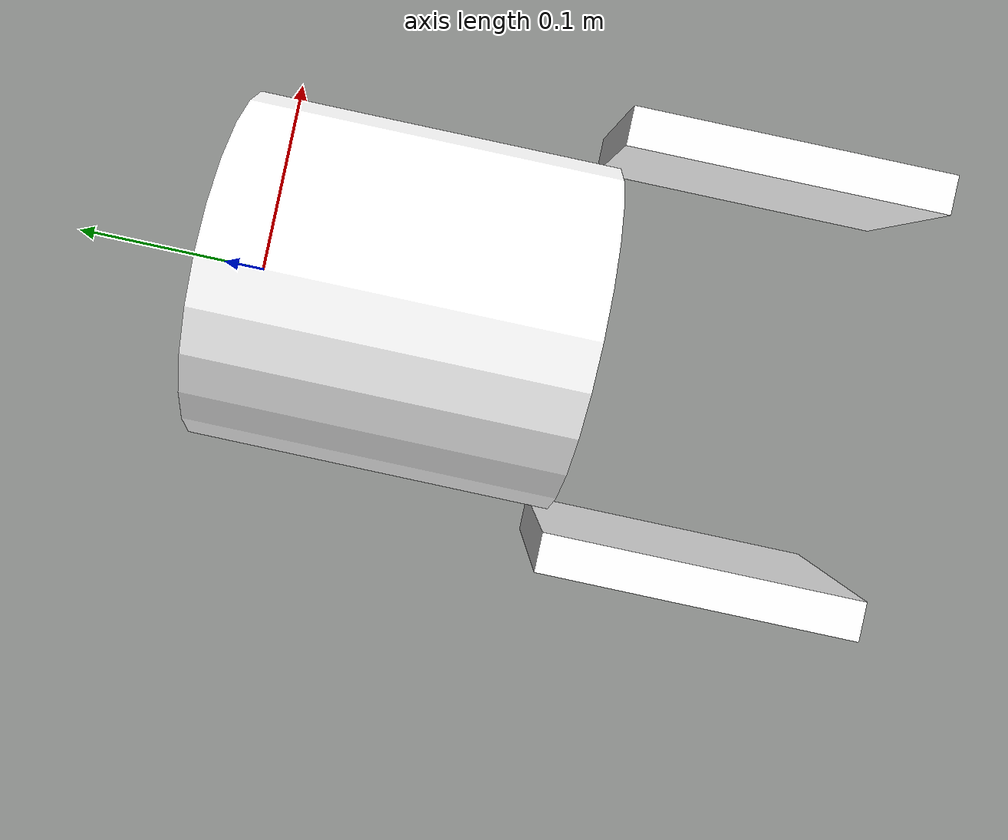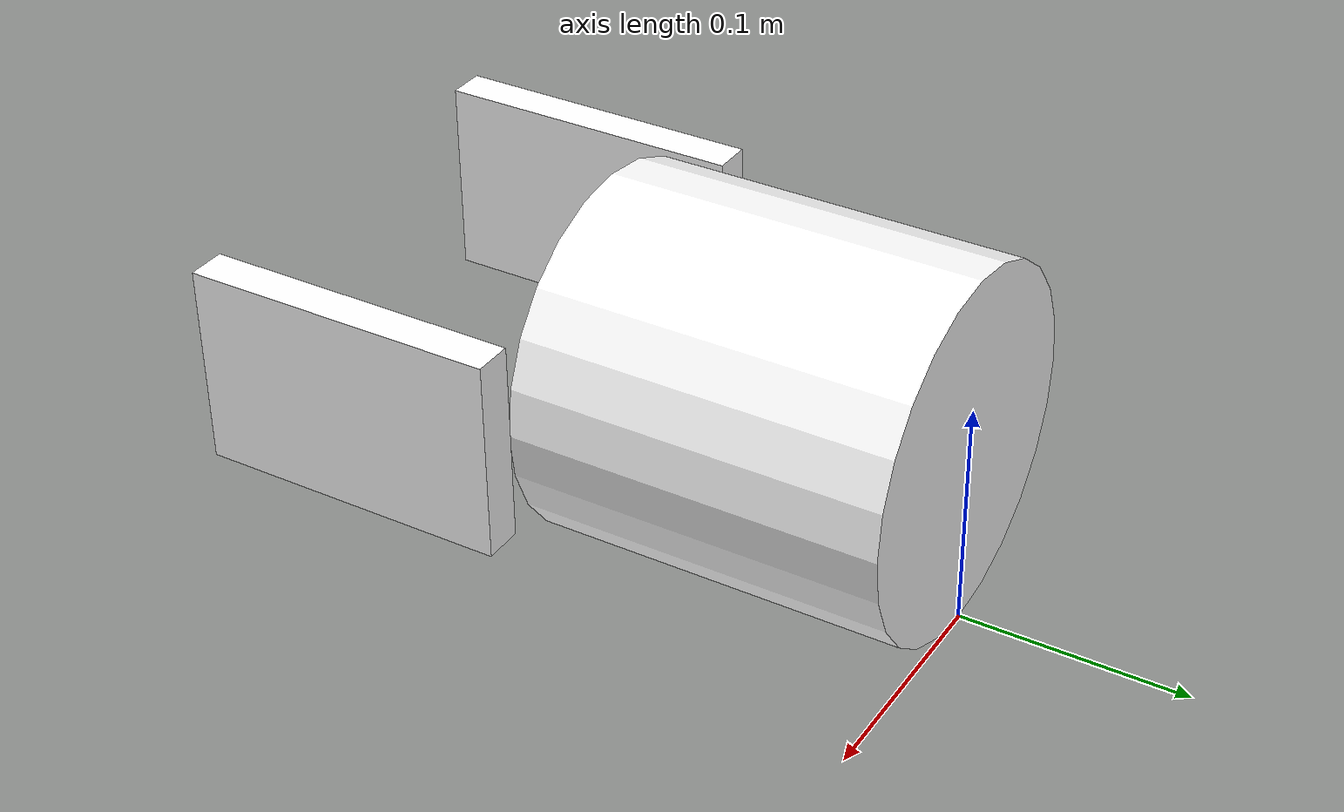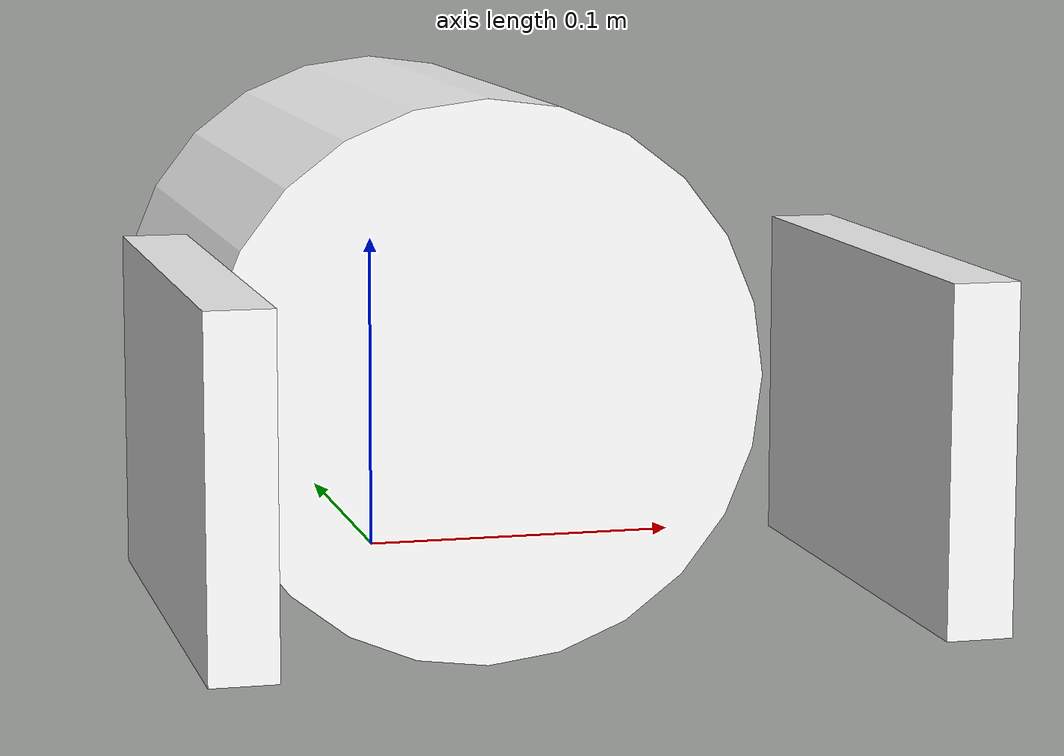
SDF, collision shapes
<?xml version="1.0" ?>
<sdf version="1.6">
  <model name="u_joint_part">
    <pose>0 0 0.07929 1.5707 0 0</pose>
    <link name="link">
      <inertial>
        <pose>0 0 0.08086 0 0 0</pose>
        <mass>0.5</mass>
        <inertia>
          <ixx>0.00187558627</ixx>
          <ixy>0</ixy>
          <ixz>0</ixz>
          <iyy>0.00187558627</iyy>
          <iyz>0</iyz>
          <izz>0.00157172602</izz>
        </inertia>
      </inertial>

      <collision name="collision1">
        <pose>0 0 0.08086 0 0 0</pose>
        <geometry>
          <cylinder>
            <radius>0.07929</radius>
            <length>0.16172</length>
          </cylinder>
        </geometry>
      </collision>

      <collision name="collision2">
        <pose>-0.09124 0 0.22804 0 0 0</pose>
        <geometry>
          <box>
            <size>0.01716 0.08862 0.13878</size>
          </box>
        </geometry>
      </collision>

      <collision name="collision3">
        <pose>0.09124 0 0.22804 0 0 0</pose>
        <geometry>
          <box>
            <size>0.01716 0.08862 0.13878</size>
          </box>
        </geometry>
      </collision>

      <visual name="visual">
         <geometry>
           <mesh>
             <uri>model://u_joint_part/meshes/u_joint.dae</uri>
           </mesh>
         </geometry>
        <material><diffuse>1 1 1 1</diffuse><specular>0.1 0.1 0.1 1</specular></material>
       </visual>
    </link>
  </model>
</sdf>
